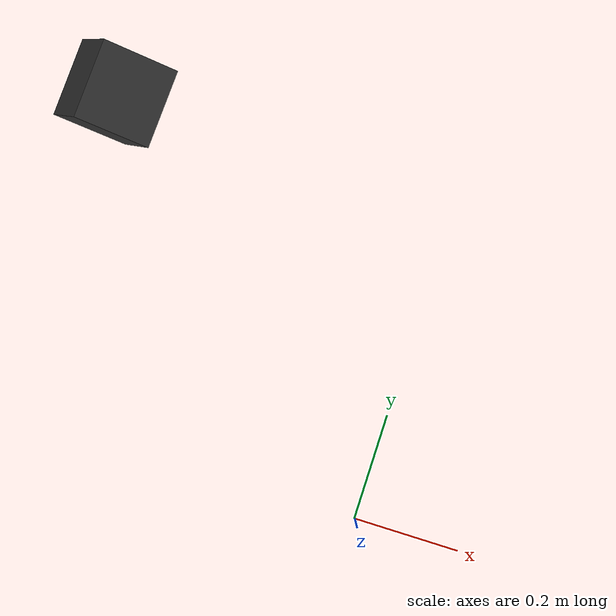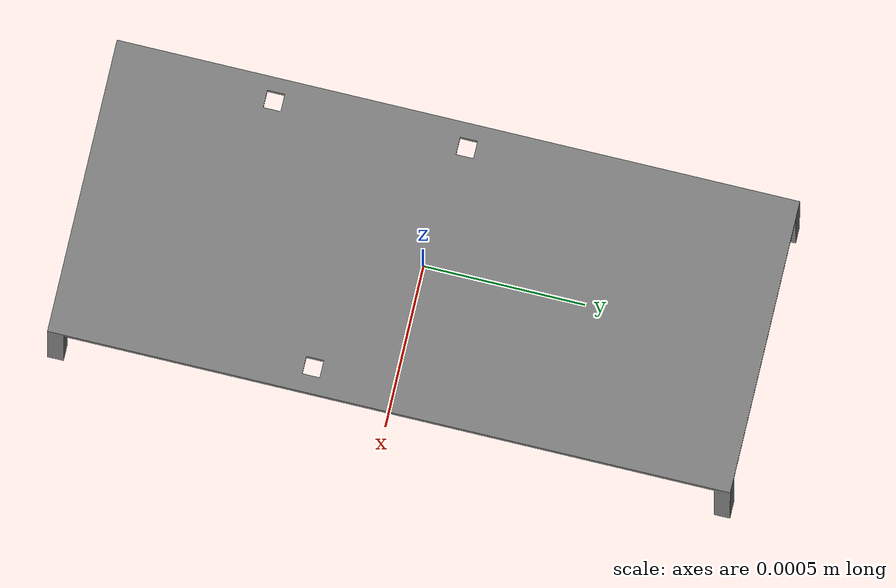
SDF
<?xml version="1.0" ?>
<sdf version="1.4">
	<model name="desk">
		<static>true</static>
		<link name="link">
			<collision name="base">
				<pose>0.5 0.4 0.85 0 0 0</pose>
				<geometry>
					<box>
						<size>1 0.8 0.04</size>
					</box>
				</geometry>
				<!-- see https://gazebosim.org/tutorials?tut=physics_params&cat=physics-->
				<surface>
					<bounce>
						<restitution_coefficient>0.01</restitution_coefficient>
						<threshold>5.0</threshold>
					</bounce>
					<friction>
						<ode>
							<mu>1</mu>
							<mu2>1</mu2>
						</ode>
					</friction>
					<contact>
						<ode>
							<max_vel>0.1</max_vel>
							<min_depth>0.001</min_depth>
							<kp>1000000.0</kp>
							<kd>1000.0</kd>
						</ode>
					</contact>
				</surface>
			</collision>
			<collision name="box">
				<pose>0.5 0.08 0.95 0 0 0</pose>
				<geometry>
					<box>
						<size>1 0.15 0.15</size>
					</box>
				</geometry>
				<surface>
					<bounce>
						<restitution_coefficient>0.01</restitution_coefficient>
						<threshold>5.0</threshold>
					</bounce>
					<friction>
						<ode>
							<mu>1</mu>
							<mu2>1</mu2>
						</ode>
					</friction>
					<contact>
						<ode>
							<max_vel>0.1</max_vel>
							<min_depth>0.001</min_depth>
							<kp>1000000.0</kp>
							<kd>1000.0</kd>
						</ode>
					</contact>
				</surface>
			</collision>
			<collision name="back">
				<pose>0.5 -0.02 1.35 1.57 0 0</pose>
				<geometry>
					<box>
						<size>1 1.0 0.04</size>
					</box>
				</geometry>
				<surface>
					<bounce>
						<restitution_coefficient>0.01</restitution_coefficient>
						<threshold>5.0</threshold>
					</bounce>
					<friction>
						<ode>
							<mu>1</mu>
							<mu2>1</mu2>
						</ode>
					</friction>
					<contact>
						<ode>
							<max_vel>0.1</max_vel>
							<min_depth>0.001</min_depth>
							<kp>1000000.0</kp>
							<kd>1000.0</kd>
						</ode>
					</contact>
				</surface>
			</collision>
			<visual name="visual">
				<geometry>
					<mesh>
						<uri>model://meshes/desk.stl</uri>
						<scale>0.001 0.001 0.001</scale>
					</mesh>
				</geometry>
				<material>
					<!-- Wheel material -->
					<ambient>0.4 0.4 0.4 1</ambient>
					<diffuse>0.5 0.5 0.5 1</diffuse>
					<specular>0 0 0 0</specular>
					<emissive>0 0 0 1</emissive>
				</material>
				<!-- End wheel material -->
			</visual>
		</link>

		<link name="camera_link"/>

		<link name="camera_rgb_frame">
			<inertial>
			<pose>0.069 -0.047 0.107 0 0 0</pose>
			<inertia>
				<ixx>0.001</ixx>
				<ixy>0.000</ixy>
				<ixz>0.000</ixz>
				<iyy>0.001</iyy>
				<iyz>0.000</iyz>
				<izz>0.001</izz>
			</inertia>
			<mass>0.035</mass>
			</inertial>

			<visual name="camera_rgb_visual">
				<geometry>
					<box>
						<size>0.1 0.1 0.1</size>
					</box>
				</geometry>
				<material>
					<ambient>0.1 0.1 0.1 1</ambient>
					<diffuse>0.2 0.2 0.2 1</diffuse>
					<specular>0 0 0 0</specular>
					<emissive>0 0 0 1</emissive>
				</material>
			</visual>

			<pose>-0.5 0.5 1.2 0 0.4 -0.06</pose>
			<sensor name="camera" type="camera">
			<always_on>true</always_on>
			<visualize>true</visualize>
			<update_rate>10</update_rate>
			<topic>camera/image_raw</topic>
			<gz_frame_id>camera_rgb_frame</gz_frame_id>
			<camera name="zed_camera">
				<camera_info_topic>camera/camera_info</camera_info_topic>
				<horizontal_fov>1.02974</horizontal_fov>
				<image>
					<width>640</width>
					<height>360</height>
					<format>R8G8B8</format>
				</image>
				<clip>
					<near>0.1</near>
					<far>5</far>
				</clip>
			</camera>
			</sensor>
		</link>

		<joint name="camera_joint" type="fixed">
			<parent>link</parent>
			<child>camera_link</child>
		</joint>

		<joint name="camera_rgb_joint" type="fixed">
			<parent>camera_link</parent>
			<child>camera_rgb_frame</child>
		</joint>

	</model>
</sdf>
